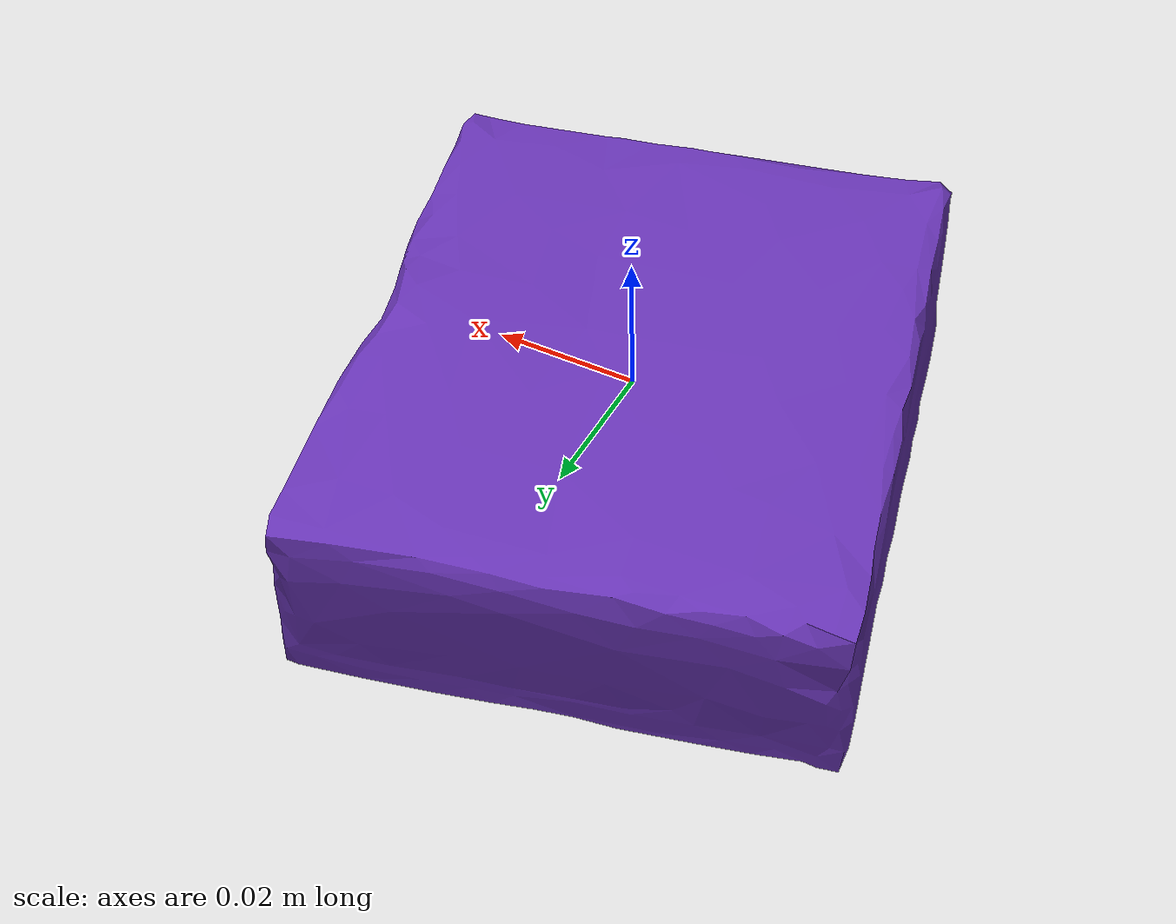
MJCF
<mujoco model="top_watertight_tiny">

  <asset>
    <mesh file="top_watertight_tiny.obj"/>
    <mesh file="top_watertight_tiny_collision_0.obj"/>
    <mesh file="top_watertight_tiny_collision_1.obj"/>
  </asset>
  <worldbody>
    <body name="top_watertight_tiny">
      <freejoint/>
      <geom solimp="0.90 0.95 0.001" solref="0.02 1.0" density="100" friction="0.95 0.4 0.3" rgba="0.4 0.2 0.7 1" mesh="top_watertight_tiny" group="2" type="mesh" contype="0" conaffinity="0"/>
      <geom solimp="0.90 0.95 0.001" solref="0.02 1.0" density="100" friction="0.95 0.4 0.3" mesh="top_watertight_tiny_collision_0" rgba="0.03970809498099781 0.22894265105522837 0.18557541909397812 1" group="3" type="mesh"/>
      <geom solimp="0.90 0.95 0.001" solref="0.02 1.0" density="100" friction="0.95 0.4 0.3" mesh="top_watertight_tiny_collision_1" rgba="0.3335562174607374 0.9031850623813116 0.7499284616863968 1" group="3" type="mesh"/>
    </body>
  </worldbody>
</mujoco>
